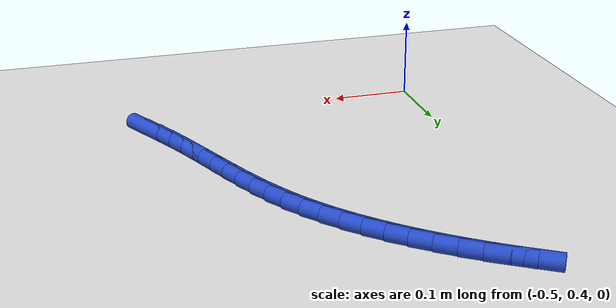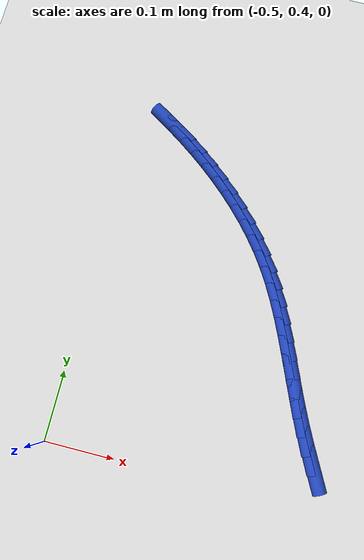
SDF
<sdf version="1.6">
 <world name="default">
  <model name="ground_plane">
   <static>1</static>
   <link name="link">
    <collision name="collision">
     <geometry><plane><normal>0 0 1</normal><size>100 100</size></plane></geometry>
     <surface><friction><ode><mu>100</mu><mu2>50</mu2></ode></friction></surface>
    </collision>
    <visual name="visual">
     <cast_shadows>0</cast_shadows>
     <geometry><plane><normal>0 0 1</normal><size>100 100</size></plane></geometry>
     <material>
      <script><uri>file://media/materials/scripts/gazebo.material</uri><name>Gazebo/WhiteGlow</name></script>
     </material>
    </visual>
   </link>
  </model>
  <model name="line">
   <link name="link_19">
    <pose>-0.13542278636980615 0.460908581016756 0.01 0 1.57 -1.0978413931100226</pose>
    <collision name="collision">
     <geometry><cylinder><radius>0.01</radius><length>0.08</length></cylinder></geometry>
    </collision>
    <visual name="visual">
     <material>
      <script><name>Gazebo/Blue</name><uri>file://media/materials/scripts/gazebo.material</uri></script>
     </material>
     <geometry><cylinder><radius>0.01</radius><length>0.08</length></cylinder></geometry>
    </visual>
   </link>
   <link name="link_20">
    <pose>-0.1471959404644581 0.4839170033915503 0.01 0 1.57 -1.1187226355027267</pose>
    <collision name="collision">
     <geometry><cylinder><radius>0.01</radius><length>0.08</length></cylinder></geometry>
    </collision>
    <visual name="visual">
     <material>
      <script><name>Gazebo/Blue</name><uri>file://media/materials/scripts/gazebo.material</uri></script>
     </material>
     <geometry><cylinder><radius>0.01</radius><length>0.08</length></cylinder></geometry>
    </visual>
   </link>
   <link name="link_21">
    <pose>-0.1584830685483288 0.5071599496029338 0.01 0 1.57 -1.1443971395748282</pose>
    <collision name="collision">
     <geometry><cylinder><radius>0.01</radius><length>0.08</length></cylinder></geometry>
    </collision>
    <visual name="visual">
     <material>
      <script><name>Gazebo/Blue</name><uri>file://media/materials/scripts/gazebo.material</uri></script>
     </material>
     <geometry><cylinder><radius>0.01</radius><length>0.08</length></cylinder></geometry>
    </visual>
   </link>
   <link name="link_22">
    <pose>-0.16916794045748912 0.530680921171539 0.01 0 1.57 -1.1641771697265613</pose>
    <collision name="collision">
     <geometry><cylinder><radius>0.01</radius><length>0.08</length></cylinder></geometry>
    </collision>
    <visual name="visual">
     <material>
      <script><name>Gazebo/Blue</name><uri>file://media/materials/scripts/gazebo.material</uri></script>
     </material>
     <geometry><cylinder><radius>0.01</radius><length>0.08</length></cylinder></geometry>
    </visual>
   </link>
   <link name="link_23">
    <pose>-0.17938349545723303 0.5544039535699202 0.01 0 1.57 -1.1742620330604225</pose>
    <collision name="collision">
     <geometry><cylinder><radius>0.01</radius><length>0.08</length></cylinder></geometry>
    </collision>
    <visual name="visual">
     <material>
      <script><name>Gazebo/Blue</name><uri>file://media/materials/scripts/gazebo.material</uri></script>
     </material>
     <geometry><cylinder><radius>0.01</radius><length>0.08</length></cylinder></geometry>
    </visual>
   </link>
   <link name="link_24">
    <pose>-0.18935160505198612 0.5782104430785403 0.01 0 1.57 -1.1746459700017604</pose>
    <collision name="collision">
     <geometry><cylinder><radius>0.01</radius><length>0.08</length></cylinder></geometry>
    </collision>
    <visual name="visual">
     <material>
      <script><name>Gazebo/Blue</name><uri>file://media/materials/scripts/gazebo.material</uri></script>
     </material>
     <geometry><cylinder><radius>0.01</radius><length>0.08</length></cylinder></geometry>
    </visual>
   </link>
   <link name="link_25">
    <pose>-0.19929425106854684 0.6019817330830197 0.01 0 1.57 -1.165282038848789</pose>
    <collision name="collision">
     <geometry><cylinder><radius>0.01</radius><length>0.08</length></cylinder></geometry>
    </collision>
    <visual name="visual">
     <material>
      <script><name>Gazebo/Blue</name><uri>file://media/materials/scripts/gazebo.material</uri></script>
     </material>
     <geometry><cylinder><radius>0.01</radius><length>0.08</length></cylinder></geometry>
    </visual>
   </link>
   <link name="link_26">
    <pose>-0.2094334153337134 0.6255991669689782 0.01 0 1.57 -1.1460755867648575</pose>
    <collision name="collision">
     <geometry><cylinder><radius>0.01</radius><length>0.08</length></cylinder></geometry>
    </collision>
    <visual name="visual">
     <material>
      <script><name>Gazebo/Blue</name><uri>file://media/materials/scripts/gazebo.material</uri></script>
     </material>
     <geometry><cylinder><radius>0.01</radius><length>0.08</length></cylinder></geometry>
    </visual>
   </link>
   <link name="link_27">
    <pose>-0.2199910796742838 0.6489440881220354 0.01 0 1.57 -1.116910302068992</pose>
    <collision name="collision">
     <geometry><cylinder><radius>0.01</radius><length>0.08</length></cylinder></geometry>
    </collision>
    <visual name="visual">
     <material>
      <script><name>Gazebo/Blue</name><uri>file://media/materials/scripts/gazebo.material</uri></script>
     </material>
     <geometry><cylinder><radius>0.01</radius><length>0.08</length></cylinder></geometry>
    </visual>
   </link>
   <link name="link_28">
    <pose>-0.23118922591705668 0.6718978399278123 0.01 0 1.57 -1.0777043868660467</pose>
    <collision name="collision">
     <geometry><cylinder><radius>0.01</radius><length>0.08</length></cylinder></geometry>
    </collision>
    <visual name="visual">
     <material>
      <script><name>Gazebo/Blue</name><uri>file://media/materials/scripts/gazebo.material</uri></script>
     </material>
     <geometry><cylinder><radius>0.01</radius><length>0.08</length></cylinder></geometry>
    </visual>
   </link>
   <link name="link_29">
    <pose>-0.2432498358888298 0.6943417657719279 0.01 0 1.57 -1.0285021204887723</pose>
    <collision name="collision">
     <geometry><cylinder><radius>0.01</radius><length>0.08</length></cylinder></geometry>
    </collision>
    <visual name="visual">
     <material>
      <script><name>Gazebo/Blue</name><uri>file://media/materials/scripts/gazebo.material</uri></script>
     </material>
     <geometry><cylinder><radius>0.01</radius><length>0.08</length></cylinder></geometry>
    </visual>
   </link>
   <link name="link_30">
    <pose>-0.2563948047004046 0.7161572413904448 0.01 0 1.57 -0.9726038961689899</pose>
    <collision name="collision">
     <geometry><cylinder><radius>0.01</radius><length>0.08</length></cylinder></geometry>
    </collision>
    <visual name="visual">
     <material>
      <script><name>Gazebo/Blue</name><uri>file://media/materials/scripts/gazebo.material</uri></script>
     </material>
     <geometry><cylinder><radius>0.01</radius><length>0.08</length></cylinder></geometry>
    </visual>
   </link>
   <link name="link_31">
    <pose>-0.27077156626795024 0.7372534211603304 0.01 0 1.57 -0.9187925252951772</pose>
    <collision name="collision">
     <geometry><cylinder><radius>0.01</radius><length>0.08</length></cylinder></geometry>
    </collision>
    <visual name="visual">
     <material>
      <script><name>Gazebo/Blue</name><uri>file://media/materials/scripts/gazebo.material</uri></script>
     </material>
     <geometry><cylinder><radius>0.01</radius><length>0.08</length></cylinder></geometry>
    </visual>
   </link>
   <link name="link_32">
    <pose>-0.2863172360465632 0.7576179212806456 0.01 0 1.57 -0.868501504472318</pose>
    <collision name="collision">
     <geometry><cylinder><radius>0.01</radius><length>0.08</length></cylinder></geometry>
    </collision>
    <visual name="visual">
     <material>
      <script><name>Gazebo/Blue</name><uri>file://media/materials/scripts/gazebo.material</uri></script>
     </material>
     <geometry><cylinder><radius>0.01</radius><length>0.08</length></cylinder></geometry>
    </visual>
   </link>
   <link name="link_33">
    <pose>-0.30293205936250106 0.7772521127938193 0.01 0 1.57 -0.821585448601514</pose>
    <collision name="collision">
     <geometry><cylinder><radius>0.01</radius><length>0.08</length></cylinder></geometry>
    </collision>
    <visual name="visual">
     <material>
      <script><name>Gazebo/Blue</name><uri>file://media/materials/scripts/gazebo.material</uri></script>
     </material>
     <geometry><cylinder><radius>0.01</radius><length>0.08</length></cylinder></geometry>
    </visual>
   </link>
   <link name="link_34">
    <pose>-0.32051628154202194 0.7961573667422805 0.01 0 1.57 -0.7778589333654485</pose>
    <collision name="collision">
     <geometry><cylinder><radius>0.01</radius><length>0.08</length></cylinder></geometry>
    </collision>
    <visual name="visual">
     <material>
      <script><name>Gazebo/Blue</name><uri>file://media/materials/scripts/gazebo.material</uri></script>
     </material>
     <geometry><cylinder><radius>0.01</radius><length>0.08</length></cylinder></geometry>
    </visual>
   </link>
   <link name="link_35">
    <pose>-0.3389701479113833 0.8143350541684585 0.01 0 1.57 -0.7371125624628163</pose>
    <collision name="collision">
     <geometry><cylinder><radius>0.01</radius><length>0.08</length></cylinder></geometry>
    </collision>
    <visual name="visual">
     <material>
      <script><name>Gazebo/Blue</name><uri>file://media/materials/scripts/gazebo.material</uri></script>
     </material>
     <geometry><cylinder><radius>0.01</radius><length>0.08</length></cylinder></geometry>
    </visual>
   </link>
   <link name="link_36">
    <pose>-0.35819390379684296 0.8317865461147819 0.01 0 1.57 -0.6991252725397453</pose>
    <collision name="collision">
     <geometry><cylinder><radius>0.01</radius><length>0.08</length></cylinder></geometry>
    </collision>
    <visual name="visual">
     <material>
      <script><name>Gazebo/Blue</name><uri>file://media/materials/scripts/gazebo.material</uri></script>
     </material>
     <geometry><cylinder><radius>0.01</radius><length>0.08</length></cylinder></geometry>
    </visual>
   </link>
   <link name="link_37">
    <pose>-0.37808779452465857 0.8485132136236796 0.01 0 1.57 -0.6636732380263552</pose>
    <collision name="collision">
     <geometry><cylinder><radius>0.01</radius><length>0.08</length></cylinder></geometry>
    </collision>
    <visual name="visual">
     <material>
      <script><name>Gazebo/Blue</name><uri>file://media/materials/scripts/gazebo.material</uri></script>
     </material>
     <geometry><cylinder><radius>0.01</radius><length>0.08</length></cylinder></geometry>
    </visual>
   </link>
   <link name="link_38">
    <pose>-0.39855206542108823 0.8645164277375813 0.01 0 1.57 -0.6305359186612792</pose>
    <collision name="collision">
     <geometry><cylinder><radius>0.01</radius><length>0.08</length></cylinder></geometry>
    </collision>
    <visual name="visual">
     <material>
      <script><name>Gazebo/Blue</name><uri>file://media/materials/scripts/gazebo.material</uri></script>
     </material>
     <geometry><cylinder><radius>0.01</radius><length>0.08</length></cylinder></geometry>
    </visual>
   </link>
   <link name="link_39">
    <pose>-0.4194869618123894 0.8797975594989151 0.01 0 1.57 -0.5994976577316703</pose>
    <collision name="collision">
     <geometry><cylinder><radius>0.01</radius><length>0.08</length></cylinder></geometry>
    </collision>
    <visual name="visual">
     <material>
      <script><name>Gazebo/Blue</name><uri>file://media/materials/scripts/gazebo.material</uri></script>
     </material>
     <geometry><cylinder><radius>0.01</radius><length>0.08</length></cylinder></geometry>
    </visual>
   </link>
   <link name="link_40">
    <pose>-0.4407936989977522 0.8943585752006334 0.01 0 1.57 -0.5703247286395975</pose>
    <collision name="collision">
     <geometry><cylinder><radius>0.01</radius><length>0.08</length></cylinder></geometry>
    </collision>
    <visual name="visual">
     <material>
      <script><name>Gazebo/Blue</name><uri>file://media/materials/scripts/gazebo.material</uri></script>
     </material>
     <geometry><cylinder><radius>0.01</radius><length>0.08</length></cylinder></geometry>
    </visual>
   </link>
  </model>
 </world>
</sdf>
